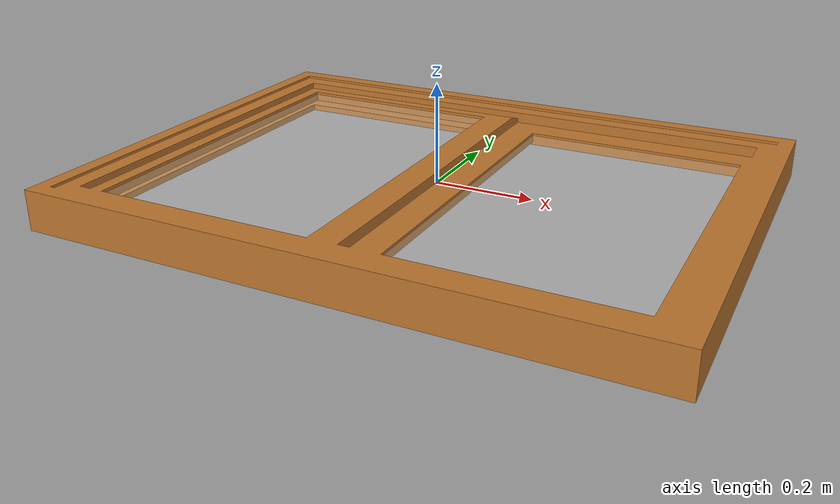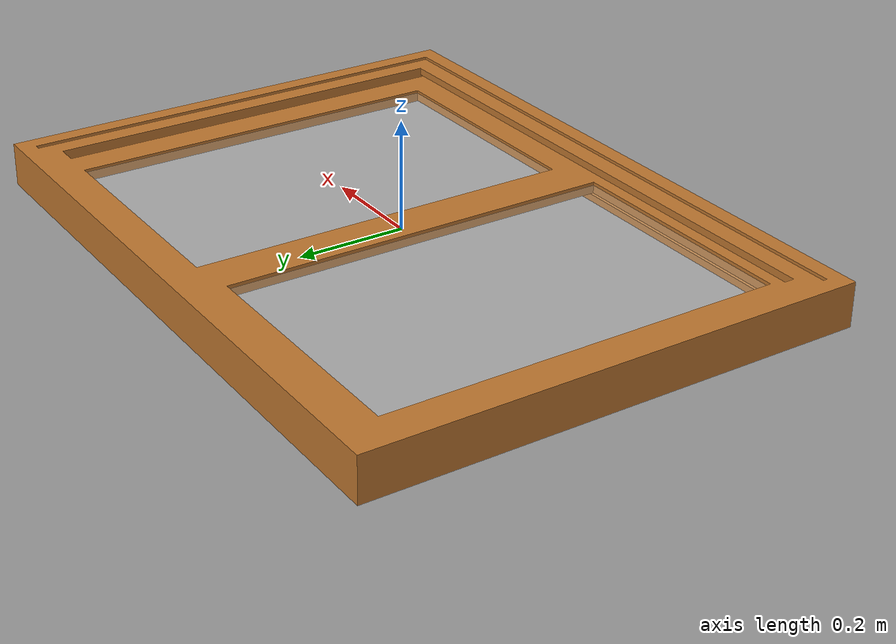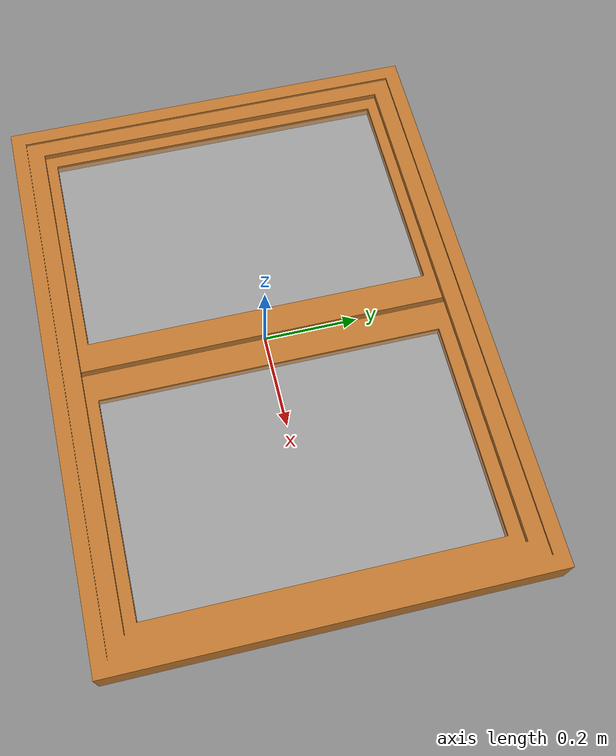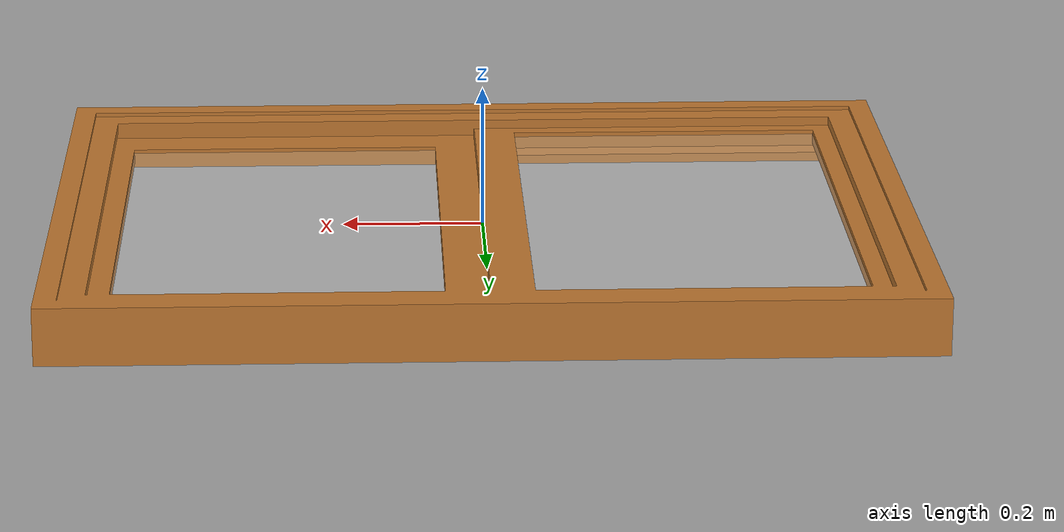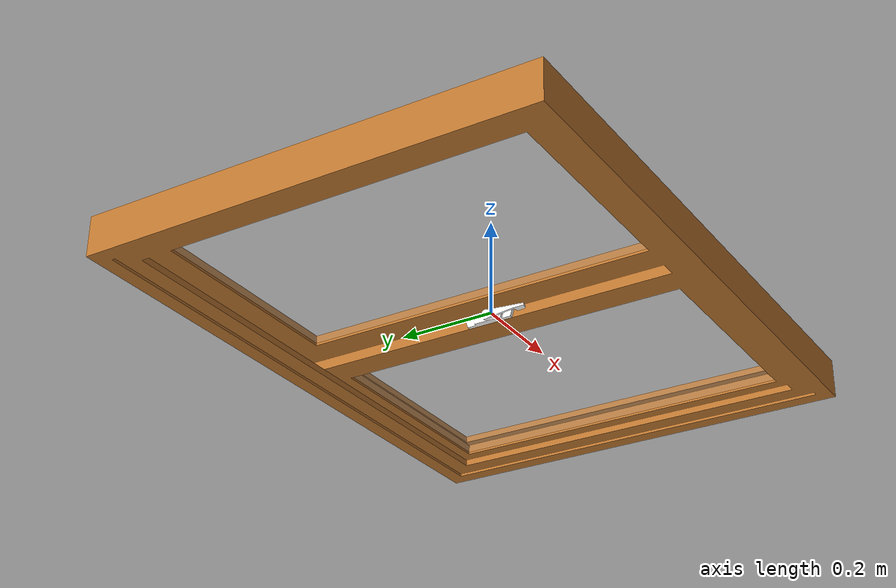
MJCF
<mujoco model="Window_Slider_48x36">
  <default>
    <default class="visual">
      <geom group="2" type="mesh" contype="0" conaffinity="0"/>
    </default>
    <default class="collision">
      <geom group="3" type="mesh"/>
    </default>
  </default>
  <asset>
    <material name="LightWoodCabinets" specular="0.5" shininess="0.5" rgba="0.745283 0.4658019 0.1863208 1.0"/>
    <material name="Glass_White_Mat" specular="0.5" shininess="0.5" rgba="1 1 1 0.122"/>
    <material name="WhitePlastic" specular="0.5" shininess="0.5" rgba="1 1 1 1.0"/>
    <mesh file="Window_Slider_48x36_0.obj"/>
    <mesh file="Window_Slider_48x36_1.obj"/>
    <mesh file="Window_Slider_48x36_2.obj"/>
    <mesh file="Window_Slider_48x36_collision_0.obj"/>
    <mesh file="Window_Slider_48x36_collision_1.obj"/>
    <mesh file="Window_Slider_48x36_collision_2.obj"/>
    <mesh file="Window_Slider_48x36_collision_3.obj"/>
    <mesh file="Window_Slider_48x36_collision_4.obj"/>
    <mesh file="Window_Slider_48x36_collision_5.obj"/>
    <mesh file="Window_Slider_48x36_collision_6.obj"/>
    <mesh file="Window_Slider_48x36_collision_7.obj"/>
    <mesh file="Window_Slider_48x36_collision_8.obj"/>
    <mesh file="Window_Slider_48x36_collision_9.obj"/>
    <mesh file="Window_Slider_48x36_collision_10.obj"/>
    <mesh file="Window_Slider_48x36_collision_11.obj"/>
    <mesh file="Window_Slider_48x36_collision_12.obj"/>
    <mesh file="Window_Slider_48x36_collision_13.obj"/>
    <mesh file="Window_Slider_48x36_collision_14.obj"/>
    <mesh file="Window_Slider_48x36_collision_15.obj"/>
    <mesh file="Window_Slider_48x36_collision_16.obj"/>
  </asset>
  <worldbody>
    <body name="Window_Slider_48x36">
      <geom mesh="Window_Slider_48x36_0" material="WhitePlastic" class="visual"/>
      <geom mesh="Window_Slider_48x36_1" material="Glass_White_Mat" class="visual"/>
      <geom mesh="Window_Slider_48x36_2" material="LightWoodCabinets" class="visual"/>
      <geom mesh="Window_Slider_48x36_collision_0" rgba="0.9445835009790077 0.9952352015249398 0.2611887484673655 1" class="collision"/>
      <geom mesh="Window_Slider_48x36_collision_1" rgba="0.89655840759926 0.06388635734628378 0.9685893034793626 1" class="collision"/>
      <geom mesh="Window_Slider_48x36_collision_2" rgba="0.13319258218492758 0.1357072069115366 0.3319974812466703 1" class="collision"/>
      <geom mesh="Window_Slider_48x36_collision_3" rgba="0.5100053476137107 0.8343154211192773 0.11175214253621735 1" class="collision"/>
      <geom mesh="Window_Slider_48x36_collision_4" rgba="0.8198747258000524 0.984394404454558 0.03100076917342376 1" class="collision"/>
      <geom mesh="Window_Slider_48x36_collision_5" rgba="0.6987018361923129 0.8987609003165559 0.025221027776411442 1" class="collision"/>
      <geom mesh="Window_Slider_48x36_collision_6" rgba="0.5964631137482114 0.9298775979720465 0.7769185239855643 1" class="collision"/>
      <geom mesh="Window_Slider_48x36_collision_7" rgba="0.018744487694706602 0.07929780895619154 0.3430442485035845 1" class="collision"/>
      <geom mesh="Window_Slider_48x36_collision_8" rgba="0.7896976038741235 0.6022868916756379 0.8895655950766937 1" class="collision"/>
      <geom mesh="Window_Slider_48x36_collision_9" rgba="0.8329883945949685 0.44754546353830393 0.8497526260675764 1" class="collision"/>
      <geom mesh="Window_Slider_48x36_collision_10" rgba="0.25304889471312597 0.5587431832742585 0.2873921708239713 1" class="collision"/>
      <geom mesh="Window_Slider_48x36_collision_11" rgba="0.0979904166533202 0.10726087901840975 0.8309095908430653 1" class="collision"/>
      <geom mesh="Window_Slider_48x36_collision_12" rgba="0.07250460729103225 0.9641104370984591 0.5185101872537877 1" class="collision"/>
      <geom mesh="Window_Slider_48x36_collision_13" rgba="0.3141141787065139 0.26845023253168643 0.22620113597352942 1" class="collision"/>
      <geom mesh="Window_Slider_48x36_collision_14" rgba="0.6283739043005214 0.5659503007718524 0.16781723820518313 1" class="collision"/>
      <geom mesh="Window_Slider_48x36_collision_15" rgba="0.4202137196160002 0.6992920354602485 0.08510637759171191 1" class="collision"/>
      <geom mesh="Window_Slider_48x36_collision_16" rgba="0.8316642620783237 0.09948998409197407 0.8368438763270738 1" class="collision"/>
    </body>
  </worldbody>
</mujoco>
